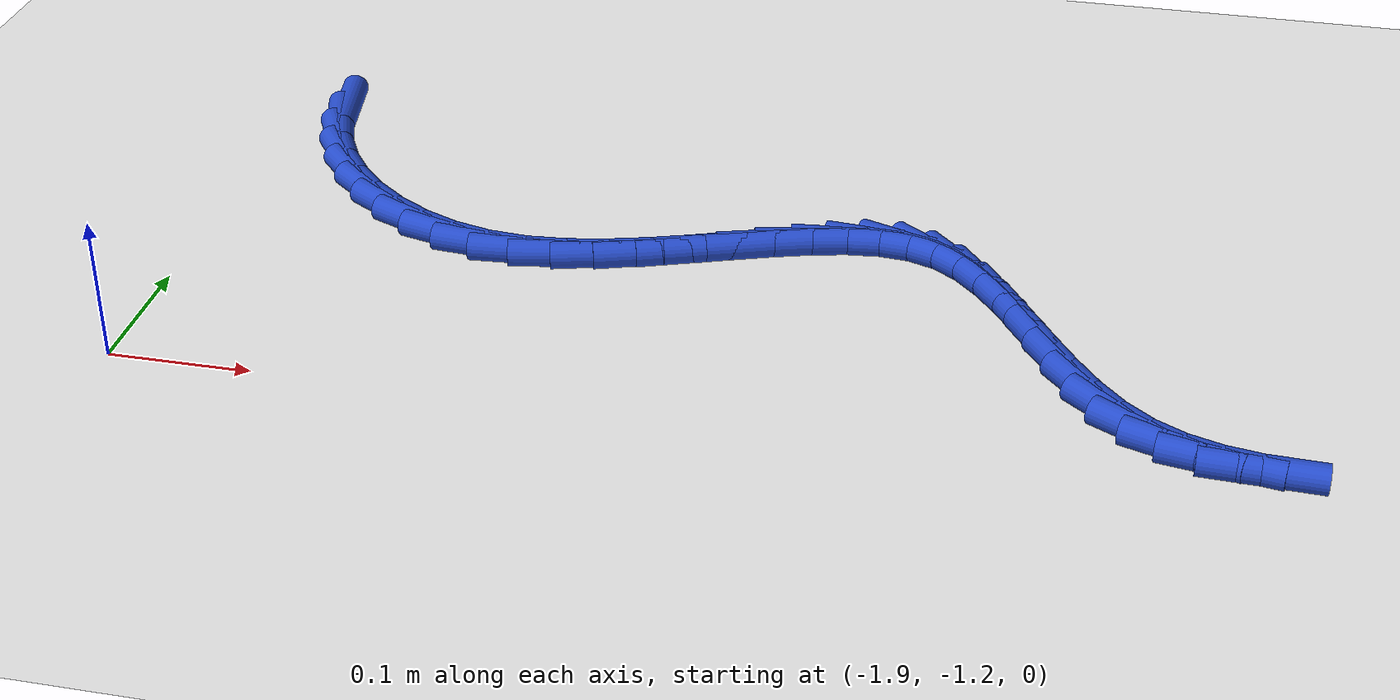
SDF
<sdf version="1.6">
 <world name="default">
  <model name="ground_plane">
   <static>1</static>
   <link name="link">
    <collision name="collision">
     <geometry><plane><normal>0 0 1</normal><size>100 100</size></plane></geometry>
     <surface><friction><ode><mu>100</mu><mu2>50</mu2></ode></friction></surface>
    </collision>
    <visual name="visual">
     <cast_shadows>0</cast_shadows>
     <geometry><plane><normal>0 0 1</normal><size>100 100</size></plane></geometry>
     <material>
      <script><uri>file://media/materials/scripts/gazebo.material</uri><name>Gazebo/WhiteGlow</name></script>
     </material>
    </visual>
   </link>
  </model>
  <model name="line">
   <link name="link_169">
    <pose>-1.8561599326553362 -0.8511793301936303 0.01 0 1.57 -1.4022230305581522</pose>
    <collision name="collision">
     <geometry><cylinder><radius>0.01</radius><length>0.08</length></cylinder></geometry>
    </collision>
    <visual name="visual">
     <material>
      <script><name>Gazebo/Blue</name><uri>file://media/materials/scripts/gazebo.material</uri></script>
     </material>
     <geometry><cylinder><radius>0.01</radius><length>0.08</length></cylinder></geometry>
    </visual>
   </link>
   <link name="link_170">
    <pose>-1.8515590144782692 -0.8782135884537522 0.01 0 1.57 -1.2334570141853844</pose>
    <collision name="collision">
     <geometry><cylinder><radius>0.01</radius><length>0.08</length></cylinder></geometry>
    </collision>
    <visual name="visual">
     <material>
      <script><name>Gazebo/Blue</name><uri>file://media/materials/scripts/gazebo.material</uri></script>
     </material>
     <geometry><cylinder><radius>0.01</radius><length>0.08</length></cylinder></geometry>
    </visual>
   </link>
   <link name="link_171">
    <pose>-1.8423165649334645 -0.9045644171795479 0.01 0 1.57 -1.0817504584037965</pose>
    <collision name="collision">
     <geometry><cylinder><radius>0.01</radius><length>0.08</length></cylinder></geometry>
    </collision>
    <visual name="visual">
     <material>
      <script><name>Gazebo/Blue</name><uri>file://media/materials/scripts/gazebo.material</uri></script>
     </material>
     <geometry><cylinder><radius>0.01</radius><length>0.08</length></cylinder></geometry>
    </visual>
   </link>
   <link name="link_172">
    <pose>-1.8289317752101826 -0.9297160813767359 0.01 0 1.57 -0.942474299900997</pose>
    <collision name="collision">
     <geometry><cylinder><radius>0.01</radius><length>0.08</length></cylinder></geometry>
    </collision>
    <visual name="visual">
     <material>
      <script><name>Gazebo/Blue</name><uri>file://media/materials/scripts/gazebo.material</uri></script>
     </material>
     <geometry><cylinder><radius>0.01</radius><length>0.08</length></cylinder></geometry>
    </visual>
   </link>
   <link name="link_173">
    <pose>-1.8119038442585984 -0.9531528453694578 0.01 0 1.57 -0.8103882436664772</pose>
    <collision name="collision">
     <geometry><cylinder><radius>0.01</radius><length>0.08</length></cylinder></geometry>
    </collision>
    <visual name="visual">
     <material>
      <script><name>Gazebo/Blue</name><uri>file://media/materials/scripts/gazebo.material</uri></script>
     </material>
     <geometry><cylinder><radius>0.01</radius><length>0.08</length></cylinder></geometry>
    </visual>
   </link>
   <link name="link_174">
    <pose>-1.7917319710288835 -0.9743589734818573 0.01 0 1.57 -0.680234208407603</pose>
    <collision name="collision">
     <geometry><cylinder><radius>0.01</radius><length>0.08</length></cylinder></geometry>
    </collision>
    <visual name="visual">
     <material>
      <script><name>Gazebo/Blue</name><uri>file://media/materials/scripts/gazebo.material</uri></script>
     </material>
     <geometry><cylinder><radius>0.01</radius><length>0.08</length></cylinder></geometry>
    </visual>
   </link>
   <link name="link_175">
    <pose>-1.7689153544712133 -0.992818730038077 0.01 0 1.57 -0.5468850178725265</pose>
    <collision name="collision">
     <geometry><cylinder><radius>0.01</radius><length>0.08</length></cylinder></geometry>
    </collision>
    <visual name="visual">
     <material>
      <script><name>Gazebo/Blue</name><uri>file://media/materials/scripts/gazebo.material</uri></script>
     </material>
     <geometry><cylinder><radius>0.01</radius><length>0.08</length></cylinder></geometry>
    </visual>
   </link>
   <link name="link_176">
    <pose>-1.7439531935357593 -1.0080163793622596 0.01 0 1.57 -0.40540478440990907</pose>
    <collision name="collision">
     <geometry><cylinder><radius>0.01</radius><length>0.08</length></cylinder></geometry>
    </collision>
    <visual name="visual">
     <material>
      <script><name>Gazebo/Blue</name><uri>file://media/materials/scripts/gazebo.material</uri></script>
     </material>
     <geometry><cylinder><radius>0.01</radius><length>0.08</length></cylinder></geometry>
    </visual>
   </link>
   <link name="link_177">
    <pose>-1.7173446871726978 -1.0194361857785483 0.01 0 1.57 -0.2513202272997614</pose>
    <collision name="collision">
     <geometry><cylinder><radius>0.01</radius><length>0.08</length></cylinder></geometry>
    </collision>
    <visual name="visual">
     <material>
      <script><name>Gazebo/Blue</name><uri>file://media/materials/scripts/gazebo.material</uri></script>
     </material>
     <geometry><cylinder><radius>0.01</radius><length>0.08</length></cylinder></geometry>
    </visual>
   </link>
   <link name="link_178">
    <pose>-1.6895890343321993 -1.0265624136110858 0.01 0 1.57 -0.08288849300214171</pose>
    <collision name="collision">
     <geometry><cylinder><radius>0.01</radius><length>0.08</length></cylinder></geometry>
    </collision>
    <visual name="visual">
     <material>
      <script><name>Gazebo/Blue</name><uri>file://media/materials/scripts/gazebo.material</uri></script>
     </material>
     <geometry><cylinder><radius>0.01</radius><length>0.08</length></cylinder></geometry>
    </visual>
   </link>
   <link name="link_179">
    <pose>-1.6611770647104254 -1.028922847222073 0.01 0 1.57 0.07311385730718825</pose>
    <collision name="collision">
     <geometry><cylinder><radius>0.01</radius><length>0.08</length></cylinder></geometry>
    </collision>
    <visual name="visual">
     <material>
      <script><name>Gazebo/Blue</name><uri>file://media/materials/scripts/gazebo.material</uri></script>
     </material>
     <geometry><cylinder><radius>0.01</radius><length>0.08</length></cylinder></geometry>
    </visual>
   </link>
   <link name="link_180">
    <pose>-1.6324508497597368 -1.0268188123695023 0.01 0 1.57 0.1919501377564085</pose>
    <collision name="collision">
     <geometry><cylinder><radius>0.01</radius><length>0.08</length></cylinder></geometry>
    </collision>
    <visual name="visual">
     <material>
      <script><name>Gazebo/Blue</name><uri>file://media/materials/scripts/gazebo.material</uri></script>
     </material>
     <geometry><cylinder><radius>0.01</radius><length>0.08</length></cylinder></geometry>
    </visual>
   </link>
   <link name="link_181">
    <pose>-1.6036245766469455 -1.0212166318308216 0.01 0 1.57 0.27532514723264945</pose>
    <collision name="collision">
     <geometry><cylinder><radius>0.01</radius><length>0.08</length></cylinder></geometry>
    </collision>
    <visual name="visual">
     <material>
      <script><name>Gazebo/Blue</name><uri>file://media/materials/scripts/gazebo.material</uri></script>
     </material>
     <geometry><cylinder><radius>0.01</radius><length>0.08</length></cylinder></geometry>
    </visual>
   </link>
   <link name="link_182">
    <pose>-1.5749082680168536 -1.0131042838567126 0.01 0 1.57 0.32710033715596915</pose>
    <collision name="collision">
     <geometry><cylinder><radius>0.01</radius><length>0.08</length></cylinder></geometry>
    </collision>
    <visual name="visual">
     <material>
      <script><name>Gazebo/Blue</name><uri>file://media/materials/scripts/gazebo.material</uri></script>
     </material>
     <geometry><cylinder><radius>0.01</radius><length>0.08</length></cylinder></geometry>
    </visual>
   </link>
   <link name="link_183">
    <pose>-1.5465119465142627 -1.0034697466978555 0.01 0 1.57 0.3498970892891537</pose>
    <collision name="collision">
     <geometry><cylinder><radius>0.01</radius><length>0.08</length></cylinder></geometry>
    </collision>
    <visual name="visual">
     <material>
      <script><name>Gazebo/Blue</name><uri>file://media/materials/scripts/gazebo.material</uri></script>
     </material>
     <geometry><cylinder><radius>0.01</radius><length>0.08</length></cylinder></geometry>
    </visual>
   </link>
   <link name="link_184">
    <pose>-1.5186456347839785 -0.9933009986049334 0.01 0 1.57 0.3439071913856421</pose>
    <collision name="collision">
     <geometry><cylinder><radius>0.01</radius><length>0.08</length></cylinder></geometry>
    </collision>
    <visual name="visual">
     <material>
      <script><name>Gazebo/Blue</name><uri>file://media/materials/scripts/gazebo.material</uri></script>
     </material>
     <geometry><cylinder><radius>0.01</radius><length>0.08</length></cylinder></geometry>
    </visual>
   </link>
   <link name="link_185">
    <pose>-1.4915193554708002 -0.9835860178286262 0.01 0 1.57 0.30612407521429646</pose>
    <collision name="collision">
     <geometry><cylinder><radius>0.01</radius><length>0.08</length></cylinder></geometry>
    </collision>
    <visual name="visual">
     <material>
      <script><name>Gazebo/Blue</name><uri>file://media/materials/scripts/gazebo.material</uri></script>
     </material>
     <geometry><cylinder><radius>0.01</radius><length>0.08</length></cylinder></geometry>
    </visual>
   </link>
   <link name="link_186">
    <pose>-1.4653431312195335 -0.9753127826196163 0.01 0 1.57 0.22947494388378464</pose>
    <collision name="collision">
     <geometry><cylinder><radius>0.01</radius><length>0.08</length></cylinder></geometry>
    </collision>
    <visual name="visual">
     <material>
      <script><name>Gazebo/Blue</name><uri>file://media/materials/scripts/gazebo.material</uri></script>
     </material>
     <geometry><cylinder><radius>0.01</radius><length>0.08</length></cylinder></geometry>
    </visual>
   </link>
   <link name="link_187">
    <pose>-1.4403269846749789 -0.9694692712285846 0.01 0 1.57 0.1022307322969886</pose>
    <collision name="collision">
     <geometry><cylinder><radius>0.01</radius><length>0.08</length></cylinder></geometry>
    </collision>
    <visual name="visual">
     <material>
      <script><name>Gazebo/Blue</name><uri>file://media/materials/scripts/gazebo.material</uri></script>
     </material>
     <geometry><cylinder><radius>0.01</radius><length>0.08</length></cylinder></geometry>
    </visual>
   </link>
   <link name="link_188">
    <pose>-1.4166809384819412 -0.9670434619062132 0.01 0 1.57 -0.08948564855719747</pose>
    <collision name="collision">
     <geometry><cylinder><radius>0.01</radius><length>0.08</length></cylinder></geometry>
    </collision>
    <visual name="visual">
     <material>
      <script><name>Gazebo/Blue</name><uri>file://media/materials/scripts/gazebo.material</uri></script>
     </material>
     <geometry><cylinder><radius>0.01</radius><length>0.08</length></cylinder></geometry>
    </visual>
   </link>
   <link name="link_189">
    <pose>-1.394615015285221 -0.9690233329031828 0.01 0 1.57 -0.3487450401574074</pose>
    <collision name="collision">
     <geometry><cylinder><radius>0.01</radius><length>0.08</length></cylinder></geometry>
    </collision>
    <visual name="visual">
     <material>
      <script><name>Gazebo/Blue</name><uri>file://media/materials/scripts/gazebo.material</uri></script>
     </material>
     <geometry><cylinder><radius>0.01</radius><length>0.08</length></cylinder></geometry>
    </visual>
   </link>
   <link name="link_190">
    <pose>-1.3743389391698702 -0.976395855448372 0.01 0 1.57 -0.6213334969451757</pose>
    <collision name="collision">
     <geometry><cylinder><radius>0.01</radius><length>0.08</length></cylinder></geometry>
    </collision>
    <visual name="visual">
     <material>
      <script><name>Gazebo/Blue</name><uri>file://media/materials/scripts/gazebo.material</uri></script>
     </material>
     <geometry><cylinder><radius>0.01</radius><length>0.08</length></cylinder></geometry>
    </visual>
   </link>
   <link name="link_191">
    <pose>-1.3558991720195577 -0.9895973284354751 0.01 0 1.57 -0.8143971516442486</pose>
    <collision name="collision">
     <geometry><cylinder><radius>0.01</radius><length>0.08</length></cylinder></geometry>
    </collision>
    <visual name="visual">
     <material>
      <script><name>Gazebo/Blue</name><uri>file://media/materials/scripts/gazebo.material</uri></script>
     </material>
     <geometry><cylinder><radius>0.01</radius><length>0.08</length></cylinder></geometry>
    </visual>
   </link>
   <link name="link_192">
    <pose>-1.3389089186876568 -1.0076027041721711 0.01 0 1.57 -0.932059287151179</pose>
    <collision name="collision">
     <geometry><cylinder><radius>0.01</radius><length>0.08</length></cylinder></geometry>
    </collision>
    <visual name="visual">
     <material>
      <script><name>Gazebo/Blue</name><uri>file://media/materials/scripts/gazebo.material</uri></script>
     </material>
     <geometry><cylinder><radius>0.01</radius><length>0.08</length></cylinder></geometry>
    </visual>
   </link>
   <link name="link_193">
    <pose>-1.3229103202547936 -1.0291472416791863 0.01 0 1.57 -0.9949383745942232</pose>
    <collision name="collision">
     <geometry><cylinder><radius>0.01</radius><length>0.08</length></cylinder></geometry>
    </collision>
    <visual name="visual">
     <material>
      <script><name>Gazebo/Blue</name><uri>file://media/materials/scripts/gazebo.material</uri></script>
     </material>
     <geometry><cylinder><radius>0.01</radius><length>0.08</length></cylinder></geometry>
    </visual>
   </link>
   <link name="link_194">
    <pose>-1.307445517801597 -1.0529661999772482 0.01 0 1.57 -1.0159428826368748</pose>
    <collision name="collision">
     <geometry><cylinder><radius>0.01</radius><length>0.08</length></cylinder></geometry>
    </collision>
    <visual name="visual">
     <material>
      <script><name>Gazebo/Blue</name><uri>file://media/materials/scripts/gazebo.material</uri></script>
     </material>
     <geometry><cylinder><radius>0.01</radius><length>0.08</length></cylinder></geometry>
    </visual>
   </link>
   <link name="link_195">
    <pose>-1.292056652408695 -1.0777948380870814 0.01 0 1.57 -1.0002226246601802</pose>
    <collision name="collision">
     <geometry><cylinder><radius>0.01</radius><length>0.08</length></cylinder></geometry>
    </collision>
    <visual name="visual">
     <material>
      <script><name>Gazebo/Blue</name><uri>file://media/materials/scripts/gazebo.material</uri></script>
     </material>
     <geometry><cylinder><radius>0.01</radius><length>0.08</length></cylinder></geometry>
    </visual>
   </link>
   <link name="link_196">
    <pose>-1.2762858651567144 -1.102368415029414 0.01 0 1.57 -0.946434826747383</pose>
    <collision name="collision">
     <geometry><cylinder><radius>0.01</radius><length>0.08</length></cylinder></geometry>
    </collision>
    <visual name="visual">
     <material>
      <script><name>Gazebo/Blue</name><uri>file://media/materials/scripts/gazebo.material</uri></script>
     </material>
     <geometry><cylinder><radius>0.01</radius><length>0.08</length></cylinder></geometry>
    </visual>
   </link>
   <link name="link_197">
    <pose>-1.2596752971262846 -1.1254221898249703 0.01 0 1.57 -0.8471629351596063</pose>
    <collision name="collision">
     <geometry><cylinder><radius>0.01</radius><length>0.08</length></cylinder></geometry>
    </collision>
    <visual name="visual">
     <material>
      <script><name>Gazebo/Blue</name><uri>file://media/materials/scripts/gazebo.material</uri></script>
     </material>
     <geometry><cylinder><radius>0.01</radius><length>0.08</length></cylinder></geometry>
    </visual>
   </link>
   <link name="link_198">
    <pose>-1.241767089398032 -1.1456914214944787 0.01 0 1.57 -0.6910207578484429</pose>
    <collision name="collision">
     <geometry><cylinder><radius>0.01</radius><length>0.08</length></cylinder></geometry>
    </collision>
    <visual name="visual">
     <material>
      <script><name>Gazebo/Blue</name><uri>file://media/materials/scripts/gazebo.material</uri></script>
     </material>
     <geometry><cylinder><radius>0.01</radius><length>0.08</length></cylinder></geometry>
    </visual>
   </link>
   <link name="link_199">
    <pose>-1.2221158949047486 -1.161944013237633 0.01 0 1.57 -0.5019492065584208</pose>
    <collision name="collision">
     <geometry><cylinder><radius>0.01</radius><length>0.08</length></cylinder></geometry>
    </collision>
    <visual name="visual">
     <material>
      <script><name>Gazebo/Blue</name><uri>file://media/materials/scripts/gazebo.material</uri></script>
     </material>
     <geometry><cylinder><radius>0.01</radius><length>0.08</length></cylinder></geometry>
    </visual>
   </link>
   <link name="link_200">
    <pose>-1.2005874810140833 -1.1737595846298896 0.01 0 1.57 -0.3243393172233681</pose>
    <collision name="collision">
     <geometry><cylinder><radius>0.01</radius><length>0.08</length></cylinder></geometry>
    </collision>
    <visual name="visual">
     <material>
      <script><name>Gazebo/Blue</name><uri>file://media/materials/scripts/gazebo.material</uri></script>
     </material>
     <geometry><cylinder><radius>0.01</radius><length>0.08</length></cylinder></geometry>
    </visual>
   </link>
   <link name="link_201">
    <pose>-1.177372277774367 -1.181564819815158 0.01 0 1.57 -0.17086542233663995</pose>
    <collision name="collision">
     <geometry><cylinder><radius>0.01</radius><length>0.08</length></cylinder></geometry>
    </collision>
    <visual name="visual">
     <material>
      <script><name>Gazebo/Blue</name><uri>file://media/materials/scripts/gazebo.material</uri></script>
     </material>
     <geometry><cylinder><radius>0.01</radius><length>0.08</length></cylinder></geometry>
    </visual>
   </link>
   <link name="link_202">
    <pose>-1.1526759382787248 -1.1858261207818686 0.01 0 1.57 -0.045547439449944896</pose>
    <collision name="collision">
     <geometry><cylinder><radius>0.01</radius><length>0.08</length></cylinder></geometry>
    </collision>
    <visual name="visual">
     <material>
      <script><name>Gazebo/Blue</name><uri>file://media/materials/scripts/gazebo.material</uri></script>
     </material>
     <geometry><cylinder><radius>0.01</radius><length>0.08</length></cylinder></geometry>
    </visual>
   </link>
  </model>
 </world>
</sdf>
